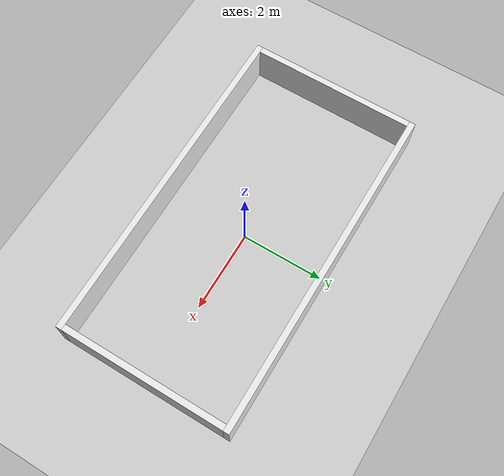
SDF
<sdf version='1.6'>
  <world name='default'>
    <light name='sun' type='directional'>
      <cast_shadows>1</cast_shadows>
      <pose frame=''>0 0 10 0 -0 0</pose>
      <diffuse>0.8 0.8 0.8 1</diffuse>
      <specular>0.2 0.2 0.2 1</specular>
      <attenuation>
        <range>1000</range>
        <constant>0.9</constant>
        <linear>0.01</linear>
        <quadratic>0.001</quadratic>
      </attenuation>
      <direction>-0.5 0.1 -0.9</direction>
    </light>

    <!-- 地面 -->
    <model name='ground_plane'>
      <static>1</static>
      <link name='link'>
        <collision name='collision'>
          <geometry>
            <plane><normal>0 0 1</normal><size>100 100</size></plane>
          </geometry>
          <surface>
            <friction><ode><mu>100</mu><mu2>50</mu2></ode></friction>
          </surface>
        </collision>
        <visual name='visual'>
          <cast_shadows>0</cast_shadows>
          <geometry>
            <plane><normal>0 0 1</normal><size>100 100</size></plane>
          </geometry>
          <material>
            <script>
              <uri>file://media/materials/scripts/gazebo.material</uri>
              <name>Gazebo/Grey</name>
            </script>
          </material>
        </visual>
      </link>
    </model>

    <!-- 北墙 y=+2.0 -->
    <model name='wall_north'>
      <static>true</static>
      <pose>0 2.075 0.5 0 0 0</pose>
      <link name='link'>
        <collision name='c'><geometry><box><size>8.3 0.15 1.0</size></box></geometry></collision>
        <visual name='v'>
          <geometry><box><size>8.3 0.15 1.0</size></box></geometry>
          <material><script><uri>file://media/materials/scripts/gazebo.material</uri><name>Gazebo/White</name></script></material>
        </visual>
      </link>
    </model>
    <!-- 南墙 y=-2.0 -->
    <model name='wall_south'>
      <static>true</static>
      <pose>0 -2.075 0.5 0 0 0</pose>
      <link name='link'>
        <collision name='c'><geometry><box><size>8.3 0.15 1.0</size></box></geometry></collision>
        <visual name='v'>
          <geometry><box><size>8.3 0.15 1.0</size></box></geometry>
          <material><script><uri>file://media/materials/scripts/gazebo.material</uri><name>Gazebo/White</name></script></material>
        </visual>
      </link>
    </model>
    <!-- 西墙 x=-4.0 -->
    <model name='wall_west'>
      <static>true</static>
      <pose>-4.075 0 0.5 0 0 0</pose>
      <link name='link'>
        <collision name='c'><geometry><box><size>0.15 4.0 1.0</size></box></geometry></collision>
        <visual name='v'>
          <geometry><box><size>0.15 4.0 1.0</size></box></geometry>
          <material><script><uri>file://media/materials/scripts/gazebo.material</uri><name>Gazebo/White</name></script></material>
        </visual>
      </link>
    </model>
    <!-- 东墙 x=+4.0 -->
    <model name='wall_east'>
      <static>true</static>
      <pose>4.075 0 0.5 0 0 0</pose>
      <link name='link'>
        <collision name='c'><geometry><box><size>0.15 4.0 1.0</size></box></geometry></collision>
        <visual name='v'>
          <geometry><box><size>0.15 4.0 1.0</size></box></geometry>
          <material><script><uri>file://media/materials/scripts/gazebo.material</uri><name>Gazebo/White</name></script></material>
        </visual>
      </link>
    </model>

    <gravity>0 0 -9.8</gravity>
    <physics name='default_physics' default='0' type='ode'>
      <max_step_size>0.001</max_step_size>
      <real_time_factor>1</real_time_factor>
      <real_time_update_rate>1000</real_time_update_rate>
    </physics>
    <scene>
      <ambient>0.4 0.4 0.4 1</ambient>
      <background>0.7 0.7 0.7 1</background>
      <shadows>1</shadows>
    </scene>
    <gui fullscreen='0'>
      <camera name='user_camera'>
        <pose frame=''>0 -10 10 0 0.7 1.57</pose>
        <view_controller>orbit</view_controller>
      </camera>
    </gui>
  </world>
</sdf>
